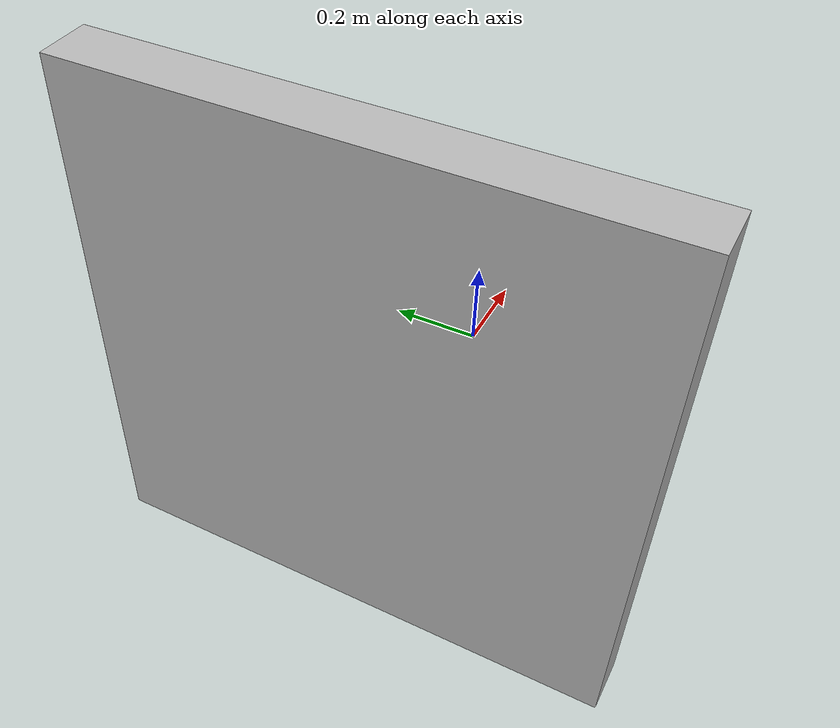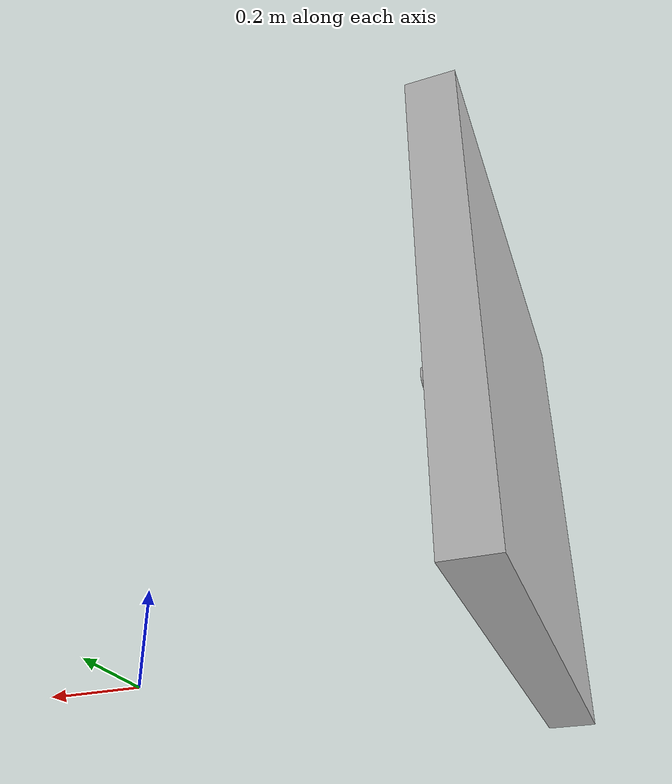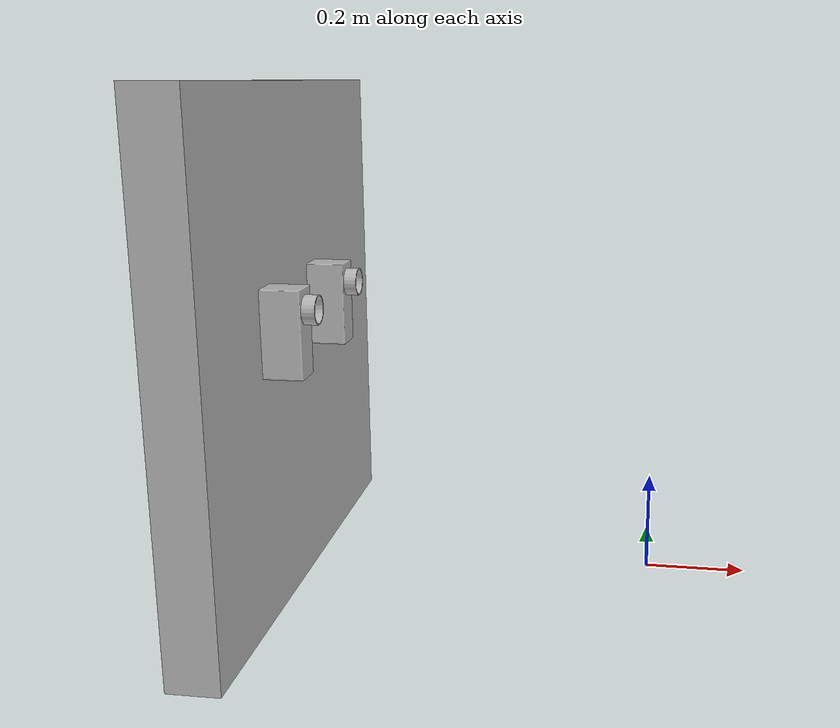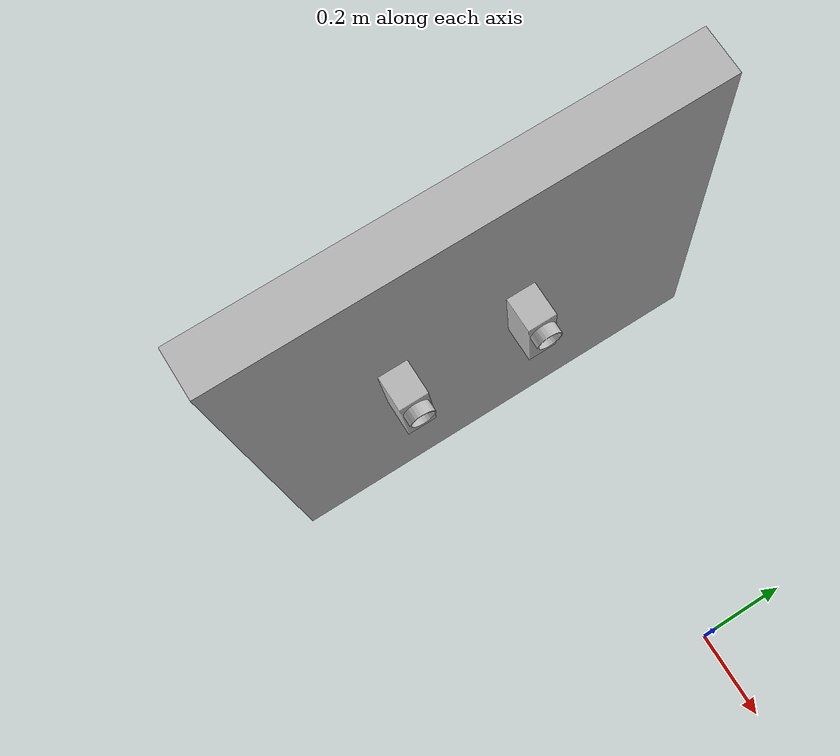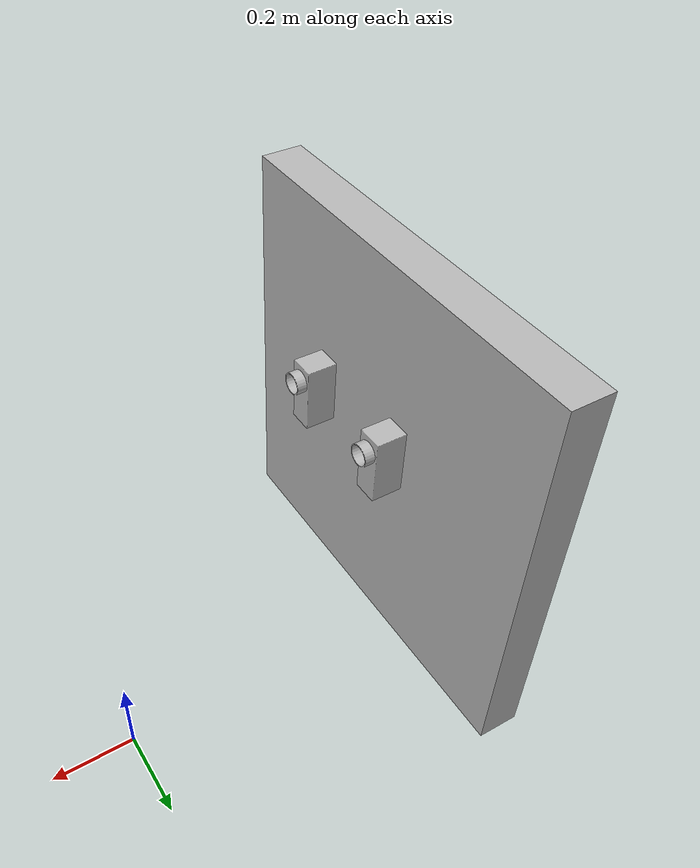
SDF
<?xml version="1.0" ?>
<sdf version="1.5">
  <model name="wall_sockets">

    <pose>-0.75 -0.1 0.5 0 0 0</pose>

<joint name="joint_wall" type="fixed">
      <child>wall</child>
      <parent>world</parent>
      <axis>
        <use_parent_model_frame>true</use_parent_model_frame>
      </axis>
    </joint>

<link name="wall">
      <pose>0.000000 0.000000 0.000000 0.000000 -0.000000 0.000000</pose>
      <inertial>
        <pose>0.000000 0.000000 0.000000 0.000000 -0.000000 0.000000</pose>
        <mass>100000</mass>
        <inertia>
          <ixx>0.010000</ixx>
          <ixy>0.000000</ixy>
          <ixz>0.000000</ixz>
          <iyy>0.010000</iyy>
          <iyz>0.000000</iyz>
          <izz>0.010000</izz>
        </inertia>
      </inertial>
      <collision name="wall_collision">
        <pose>0.000000 0.000000 0.000000 0.000000 0.000000 0.000000</pose>
        <geometry>
	  <box>
	    <size> 0.1 1 1 </size>
	  </box>
        </geometry>
      </collision>
      <visual name="wall_vis">
        <pose>0.000000 0.000000 0.000000 0.000000 0.000000 0.000000</pose>
        <geometry>
          <box>
	    <size> 0.1 1 1 </size>
	  </box>
        </geometry>
      </visual>
      <velocity_decay />
    </link>

<joint name="joint_socket1" type="fixed">
      <child>socket1</child>
      <parent>wall</parent>
      <axis>
        <use_parent_model_frame>true</use_parent_model_frame>
      </axis>
    </joint>

<link name="socket1">
      <pose frame=''>0.125 -0.2 0.1 1.57 0 1.57</pose>
      <inertial>
        <pose frame=''>0 -0.041907 -0.028887 0 -0 0</pose>
        <mass>0.1684</mass>
        <inertia>
          <ixx>0.00062222</ixx>
          <ixy>9.8906e-10</ixy>
          <ixz>2.4666e-10</ixz>
          <iyy>0.00021389</iyy>
          <iyz>9.0339e-06</iyz>
          <izz>0.00061855</izz>
        </inertia>
      </inertial>
      <collision name="socket1_collision">
        <pose frame=''>0 0 0 1.5708 -0 0</pose>
        <geometry>
          <mesh>
            <scale>1 1 1</scale>
            <uri>model://socket/meshes/peng.STL</uri>
          </mesh>
        </geometry>
      </collision>
      <visual name="socket1_visual">
        <pose frame=''>0 0 0 1.5708 -0 0</pose>
        <geometry>
          <mesh>
            <scale>1 1 1</scale>
            <uri>model://socket/meshes/peng.STL</uri>
          </mesh>
        </geometry>
      </visual>
    </link>

<joint name="joint_socket2" type="fixed">
      <child>socket2</child>
      <parent>wall</parent>
      <axis>
        <use_parent_model_frame>true</use_parent_model_frame>
      </axis>
    </joint>

<link name="socket2">
      <pose frame=''>0.125 0.075 0.1 1.57 0 1.57</pose>
      <inertial>
        <pose frame=''>0 -0.041907 -0.028887 0 -0 0</pose>
        <mass>0.1684</mass>
        <inertia>
          <ixx>0.00062222</ixx>
          <ixy>9.8906e-10</ixy>
          <ixz>2.4666e-10</ixz>
          <iyy>0.00021389</iyy>
          <iyz>9.0339e-06</iyz>
          <izz>0.00061855</izz>
        </inertia>
      </inertial>
      <collision name="socket2_collision">
        <pose frame=''>0 0 0 1.5708 -0 0</pose>
        <geometry>
          <mesh>
            <scale>1 1 1</scale>
            <uri>model://socket/meshes/peng.STL</uri>
          </mesh>
        </geometry>
      </collision>
      <visual name="socket2_visual">
        <pose frame=''>0 0 0 1.5708 -0 0</pose>
        <geometry>
          <mesh>
            <scale>1 1 1</scale>
            <uri>model://socket/meshes/peng.STL</uri>
          </mesh>
        </geometry>
      </visual>
    </link>

  </model>
</sdf>
